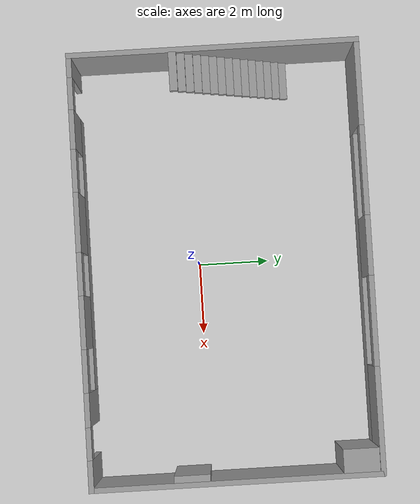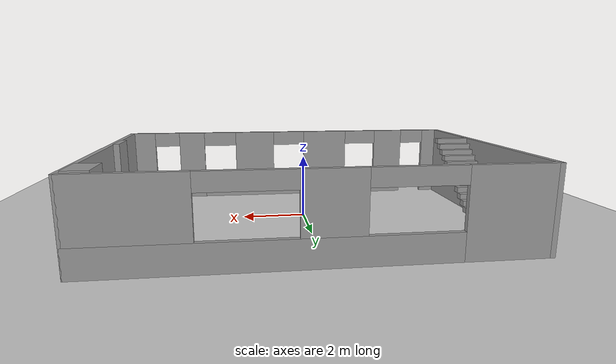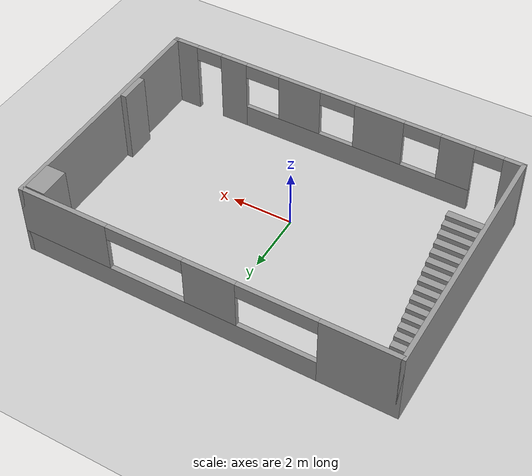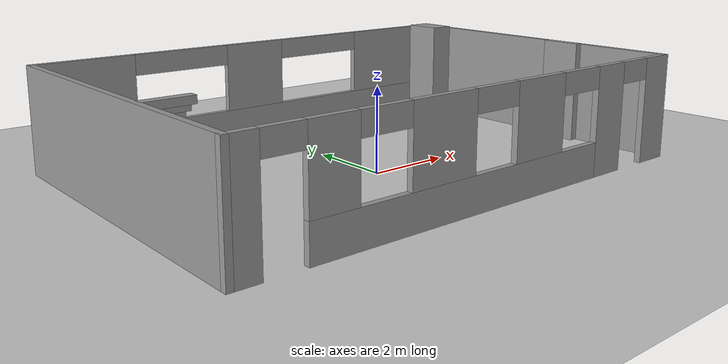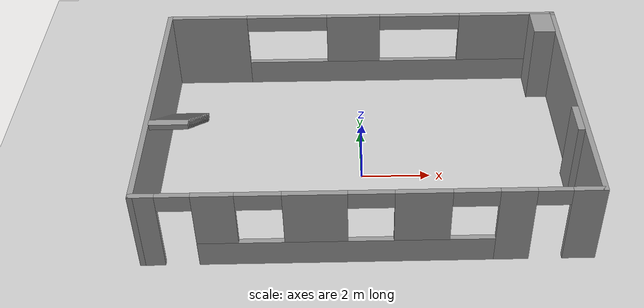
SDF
<sdf version="1.7">
 <world name="__default__">
  <gravity>0 0 -9.8</gravity>
  <magnetic_field>6e-06 2.3e-05 -4.2e-05</magnetic_field>
  <atmosphere type="adiabatic"/>
  <physics type="ode">
   <max_step_size>0.001</max_step_size>
   <real_time_factor>1</real_time_factor>
   <real_time_update_rate>1000</real_time_update_rate>
  </physics>
  <scene><ambient>0.4 0.4 0.4 1</ambient><background>0.7 0.7 0.7 1</background><shadows>1</shadows></scene>
  <spherical_coordinates>
   <surface_model>EARTH_WGS84</surface_model>
   <latitude_deg>0</latitude_deg>
   <longitude_deg>0</longitude_deg>
   <elevation>0</elevation>
   <heading_deg>0</heading_deg>
  </spherical_coordinates>
  <model name="new_room">
   <pose>0.112057 0.72809 0 0 -0 0</pose>
   <link name="Stairs_1">
    <visual name="Stairs_1_Visual_0">
     <pose>-5.40057 2.01661 0.083333 0 -0 0</pose>
     <geometry><box><size>1.09153 0.224566 0.166667</size></box></geometry>
     <material>
      <script><uri>file://media/materials/scripts/gazebo.material</uri><name>Gazebo/Grey</name></script>
      <ambient>1 1 1 1</ambient>
     </material>
     <meta><layer>0</layer></meta>
    </visual>
    <collision name="Stairs_1_Collision_0">
     <geometry><box><size>1.09153 0.224566 0.166667</size></box></geometry>
     <pose>-5.40057 2.01661 0.083333 0 -0 0</pose>
    </collision>
    <visual name="Stairs_1_Visual_1">
     <pose>-5.40057 1.79205 0.25 0 -0 0</pose>
     <geometry><box><size>1.09153 0.224566 0.166667</size></box></geometry>
     <material>
      <script><uri>file://media/materials/scripts/gazebo.material</uri><name>Gazebo/Grey</name></script>
      <ambient>1 1 1 1</ambient>
     </material>
     <meta><layer>0</layer></meta>
    </visual>
    <collision name="Stairs_1_Collision_1">
     <geometry><box><size>1.09153 0.224566 0.166667</size></box></geometry>
     <pose>-5.40057 1.79205 0.25 0 -0 0</pose>
    </collision>
    <visual name="Stairs_1_Visual_2">
     <pose>-5.40057 1.56748 0.416667 0 -0 0</pose>
     <geometry><box><size>1.09153 0.224566 0.166667</size></box></geometry>
     <material>
      <script><uri>file://media/materials/scripts/gazebo.material</uri><name>Gazebo/Grey</name></script>
      <ambient>1 1 1 1</ambient>
     </material>
     <meta><layer>0</layer></meta>
    </visual>
    <collision name="Stairs_1_Collision_2">
     <geometry><box><size>1.09153 0.224566 0.166667</size></box></geometry>
     <pose>-5.40057 1.56748 0.416667 0 -0 0</pose>
    </collision>
    <visual name="Stairs_1_Visual_3">
     <pose>-5.40057 1.34291 0.583333 0 -0 0</pose>
     <geometry><box><size>1.09153 0.224566 0.166667</size></box></geometry>
     <material>
      <script><uri>file://media/materials/scripts/gazebo.material</uri><name>Gazebo/Grey</name></script>
      <ambient>1 1 1 1</ambient>
     </material>
     <meta><layer>0</layer></meta>
    </visual>
    <collision name="Stairs_1_Collision_3">
     <geometry><box><size>1.09153 0.224566 0.166667</size></box></geometry>
     <pose>-5.40057 1.34291 0.583333 0 -0 0</pose>
    </collision>
    <visual name="Stairs_1_Visual_4">
     <pose>-5.40057 1.11835 0.75 0 -0 0</pose>
     <geometry><box><size>1.09153 0.224566 0.166667</size></box></geometry>
     <material>
      <script><uri>file://media/materials/scripts/gazebo.material</uri><name>Gazebo/Grey</name></script>
      <ambient>1 1 1 1</ambient>
     </material>
     <meta><layer>0</layer></meta>
    </visual>
    <collision name="Stairs_1_Collision_4">
     <geometry><box><size>1.09153 0.224566 0.166667</size></box></geometry>
     <pose>-5.40057 1.11835 0.75 0 -0 0</pose>
    </collision>
    <visual name="Stairs_1_Visual_5">
     <pose>-5.40057 0.893779 0.916667 0 -0 0</pose>
     <geometry><box><size>1.09153 0.224566 0.166667</size></box></geometry>
     <material>
      <script><uri>file://media/materials/scripts/gazebo.material</uri><name>Gazebo/Grey</name></script>
      <ambient>1 1 1 1</ambient>
     </material>
     <meta><layer>0</layer></meta>
    </visual>
    <collision name="Stairs_1_Collision_5">
     <geometry><box><size>1.09153 0.224566 0.166667</size></box></geometry>
     <pose>-5.40057 0.893779 0.916667 0 -0 0</pose>
    </collision>
    <visual name="Stairs_1_Visual_6">
     <pose>-5.40057 0.669213 1.08333 0 -0 0</pose>
     <geometry><box><size>1.09153 0.224566 0.166667</size></box></geometry>
     <material>
      <script><uri>file://media/materials/scripts/gazebo.material</uri><name>Gazebo/Grey</name></script>
      <ambient>1 1 1 1</ambient>
     </material>
     <meta><layer>0</layer></meta>
    </visual>
    <collision name="Stairs_1_Collision_6">
     <geometry><box><size>1.09153 0.224566 0.166667</size></box></geometry>
     <pose>-5.40057 0.669213 1.08333 0 -0 0</pose>
    </collision>
    <visual name="Stairs_1_Visual_7">
     <pose>-5.40057 0.444646 1.25 0 -0 0</pose>
     <geometry><box><size>1.09153 0.224566 0.166667</size></box></geometry>
     <material>
      <script><uri>file://media/materials/scripts/gazebo.material</uri><name>Gazebo/Grey</name></script>
      <ambient>1 1 1 1</ambient>
     </material>
     <meta><layer>0</layer></meta>
    </visual>
    <collision name="Stairs_1_Collision_7">
     <geometry><box><size>1.09153 0.224566 0.166667</size></box></geometry>
     <pose>-5.40057 0.444646 1.25 0 -0 0</pose>
    </collision>
    <visual name="Stairs_1_Visual_8">
     <pose>-5.40057 0.22008 1.41667 0 -0 0</pose>
     <geometry><box><size>1.09153 0.224566 0.166667</size></box></geometry>
     <material>
      <script><uri>file://media/materials/scripts/gazebo.material</uri><name>Gazebo/Grey</name></script>
      <ambient>1 1 1 1</ambient>
     </material>
     <meta><layer>0</layer></meta>
    </visual>
    <collision name="Stairs_1_Collision_8">
     <geometry><box><size>1.09153 0.224566 0.166667</size></box></geometry>
     <pose>-5.40057 0.22008 1.41667 0 -0 0</pose>
    </collision>
    <visual name="Stairs_1_Visual_9">
     <pose>-5.40057 -0.004487 1.58333 0 -0 0</pose>
     <geometry><box><size>1.09153 0.224566 0.166667</size></box></geometry>
     <material>
      <script><uri>file://media/materials/scripts/gazebo.material</uri><name>Gazebo/Grey</name></script>
      <ambient>1 1 1 1</ambient>
     </material>
     <meta><layer>0</layer></meta>
    </visual>
    <collision name="Stairs_1_Collision_9">
     <geometry><box><size>1.09153 0.224566 0.166667</size></box></geometry>
     <pose>-5.40057 -0.004487 1.58333 0 -0 0</pose>
    </collision>
    <visual name="Stairs_1_Visual_10">
     <pose>-5.40057 -0.229053 1.75 0 -0 0</pose>
     <geometry><box><size>1.09153 0.224566 0.166667</size></box></geometry>
     <material>
      <script><uri>file://media/materials/scripts/gazebo.material</uri><name>Gazebo/Grey</name></script>
      <ambient>1 1 1 1</ambient>
     </material>
     <meta><layer>0</layer></meta>
    </visual>
    <collision name="Stairs_1_Collision_10">
     <geometry><box><size>1.09153 0.224566 0.166667</size></box></geometry>
     <pose>-5.40057 -0.229053 1.75 0 -0 0</pose>
    </collision>
    <visual name="Stairs_1_Visual_11">
     <pose>-5.40057 -0.453619 1.91667 0 -0 0</pose>
     <geometry><box><size>1.09153 0.224566 0.166667</size></box></geometry>
     <material>
      <script><uri>file://media/materials/scripts/gazebo.material</uri><name>Gazebo/Grey</name></script>
      <ambient>1 1 1 1</ambient>
     </material>
     <meta><layer>0</layer></meta>
    </visual>
    <collision name="Stairs_1_Collision_11">
     <geometry><box><size>1.09153 0.224566 0.166667</size></box></geometry>
     <pose>-5.40057 -0.453619 1.91667 0 -0 0</pose>
    </collision>
    <visual name="Stairs_1_Visual_12">
     <pose>-5.40057 -0.678186 2.08333 0 -0 0</pose>
     <geometry><box><size>1.09153 0.224566 0.166667</size></box></geometry>
     <material>
      <script><uri>file://media/materials/scripts/gazebo.material</uri><name>Gazebo/Grey</name></script>
      <ambient>1 1 1 1</ambient>
     </material>
     <meta><layer>0</layer></meta>
    </visual>
    <collision name="Stairs_1_Collision_12">
     <geometry><box><size>1.09153 0.224566 0.166667</size></box></geometry>
     <pose>-5.40057 -0.678186 2.08333 0 -0 0</pose>
    </collision>
    <visual name="Stairs_1_Visual_13">
     <pose>-5.40057 -0.902752 2.25 0 -0 0</pose>
     <geometry><box><size>1.09153 0.224566 0.166667</size></box></geometry>
     <material>
      <script><uri>file://media/materials/scripts/gazebo.material</uri><name>Gazebo/Grey</name></script>
      <ambient>1 1 1 1</ambient>
     </material>
     <meta><layer>0</layer></meta>
    </visual>
    <collision name="Stairs_1_Collision_13">
     <geometry><box><size>1.09153 0.224566 0.166667</size></box></geometry>
     <pose>-5.40057 -0.902752 2.25 0 -0 0</pose>
    </collision>
    <visual name="Stairs_1_Visual_14">
     <pose>-5.40057 -1.12732 2.41667 0 -0 0</pose>
     <geometry><box><size>1.09153 0.224566 0.166667</size></box></geometry>
     <material>
      <script><uri>file://media/materials/scripts/gazebo.material</uri><name>Gazebo/Grey</name></script>
      <ambient>1 1 1 1</ambient>
     </material>
     <meta><layer>0</layer></meta>
    </visual>
    <collision name="Stairs_1_Collision_14">
     <geometry><box><size>1.09153 0.224566 0.166667</size></box></geometry>
     <pose>-5.40057 -1.12732 2.41667 0 -0 0</pose>
    </collision>
   </link>
   <link name="Wall_21">
    <pose>-0 4 0 0 -0 0</pose>
    <visual name="Wall_21_Visual_0">
     <pose>-4.84103 0 1.25 0 -0 0</pose>
     <geometry><box><size>2.46795 0.15 2.5</size></box></geometry>
     <material>
      <script><uri>file://media/materials/scripts/gazebo.material</uri><name>Gazebo/Grey</name></script>
      <ambient>1 1 1 1</ambient>
     </material>
     <meta><layer>0</layer></meta>
    </visual>
    <collision name="Wall_21_Collision_0">
     <geometry><box><size>2.46795 0.15 2.5</size></box></geometry>
     <pose>-4.84103 0 1.25 0 -0 0</pose>
    </collision>
    <visual name="Wall_21_Visual_1">
     <pose>1.23397 0 0.4 0 -0 0</pose>
     <geometry><box><size>9.68205 0.15 0.8</size></box></geometry>
     <material>
      <script><uri>file://media/materials/scripts/gazebo.material</uri><name>Gazebo/Grey</name></script>
      <ambient>1 1 1 1</ambient>
     </material>
     <meta><layer>0</layer></meta>
    </visual>
    <collision name="Wall_21_Collision_1">
     <geometry><box><size>9.68205 0.15 0.8</size></box></geometry>
     <pose>1.23397 0 0.4 0 -0 0</pose>
    </collision>
    <visual name="Wall_21_Visual_2">
     <pose>-0.270095 0 1.65 0 -0 0</pose>
     <geometry><box><size>1.67391 0.15 1.7</size></box></geometry>
     <material>
      <script><uri>file://media/materials/scripts/gazebo.material</uri><name>Gazebo/Grey</name></script>
      <ambient>1 1 1 1</ambient>
     </material>
     <meta><layer>0</layer></meta>
    </visual>
    <collision name="Wall_21_Collision_2">
     <geometry><box><size>1.67391 0.15 1.7</size></box></geometry>
     <pose>-0.270095 0 1.65 0 -0 0</pose>
    </collision>
    <visual name="Wall_21_Visual_3">
     <pose>4.57093 0 1.65 0 -0 0</pose>
     <geometry><box><size>3.00814 0.15 1.7</size></box></geometry>
     <material>
      <script><uri>file://media/materials/scripts/gazebo.material</uri><name>Gazebo/Grey</name></script>
      <ambient>1 1 1 1</ambient>
     </material>
     <meta><layer>0</layer></meta>
    </visual>
    <collision name="Wall_21_Collision_3">
     <geometry><box><size>3.00814 0.15 1.7</size></box></geometry>
     <pose>4.57093 0 1.65 0 -0 0</pose>
    </collision>
    <visual name="Wall_21_Visual_4">
     <pose>-2.35705 0 2.25 0 -0 0</pose>
     <geometry><box><size>2.5 0.15 0.5</size></box></geometry>
     <material>
      <script><uri>file://media/materials/scripts/gazebo.material</uri><name>Gazebo/Grey</name></script>
      <ambient>1 1 1 1</ambient>
     </material>
     <meta><layer>0</layer></meta>
    </visual>
    <collision name="Wall_21_Collision_4">
     <geometry><box><size>2.5 0.15 0.5</size></box></geometry>
     <pose>-2.35705 0 2.25 0 -0 0</pose>
    </collision>
    <visual name="Wall_21_Visual_5">
     <pose>1.81686 0 2.25 0 -0 0</pose>
     <geometry><box><size>2.5 0.15 0.5</size></box></geometry>
     <material>
      <script><uri>file://media/materials/scripts/gazebo.material</uri><name>Gazebo/Grey</name></script>
      <ambient>1 1 1 1</ambient>
     </material>
     <meta><layer>0</layer></meta>
    </visual>
    <collision name="Wall_21_Collision_5">
     <geometry><box><size>2.5 0.15 0.5</size></box></geometry>
     <pose>1.81686 0 2.25 0 -0 0</pose>
    </collision>
   </link>
   <link name="Wall_22">
    <collision name="Wall_22_Collision">
     <geometry><box><size>8.15 0.15 2.5</size></box></geometry>
     <pose>0 0 1.25 0 -0 0</pose>
    </collision>
    <visual name="Wall_22_Visual">
     <pose>0 0 1.25 0 -0 0</pose>
     <geometry><box><size>8.15 0.15 2.5</size></box></geometry>
     <material>
      <script><uri>file://media/materials/scripts/gazebo.material</uri><name>Gazebo/Grey</name></script>
      <ambient>1 1 1 1</ambient>
     </material>
     <meta><layer>0</layer></meta>
    </visual>
    <pose>6 0 0 0 -0 -1.5708</pose>
   </link>
   <link name="Wall_23">
    <pose>-0 -4 0 0 -0 3.14159</pose>
    <visual name="Wall_23_Visual_0">
     <pose>-5.62779 0 1.25 0 -0 0</pose>
     <geometry><box><size>0.894419 0.15 2.5</size></box></geometry>
     <material>
      <script><uri>file://media/materials/scripts/gazebo.material</uri><name>Gazebo/Grey</name></script>
      <ambient>1 1 1 1</ambient>
     </material>
     <meta><layer>0</layer></meta>
    </visual>
    <collision name="Wall_23_Collision_0">
     <geometry><box><size>0.894419 0.15 2.5</size></box></geometry>
     <pose>-5.62779 0 1.25 0 -0 0</pose>
    </collision>
    <visual name="Wall_23_Visual_1">
     <pose>-3.80993 0 1.25 0 -0 0</pose>
     <geometry><box><size>0.941293 0.15 2.5</size></box></geometry>
     <material>
      <script><uri>file://media/materials/scripts/gazebo.material</uri><name>Gazebo/Grey</name></script>
      <ambient>1 1 1 1</ambient>
     </material>
     <meta><layer>0</layer></meta>
    </visual>
    <collision name="Wall_23_Collision_1">
     <geometry><box><size>0.941293 0.15 2.5</size></box></geometry>
     <pose>-3.80993 0 1.25 0 -0 0</pose>
    </collision>
    <visual name="Wall_23_Visual_2">
     <pose>5.73474 0 1.25 0 -0 0</pose>
     <geometry><box><size>0.680521 0.15 2.5</size></box></geometry>
     <material>
      <script><uri>file://media/materials/scripts/gazebo.material</uri><name>Gazebo/Grey</name></script>
      <ambient>1 1 1 1</ambient>
     </material>
     <meta><layer>0</layer></meta>
    </visual>
    <collision name="Wall_23_Collision_2">
     <geometry><box><size>0.680521 0.15 2.5</size></box></geometry>
     <pose>5.73474 0 1.25 0 -0 0</pose>
    </collision>
    <visual name="Wall_23_Visual_3">
     <pose>0.577595 0 0.4 0 -0 0</pose>
     <geometry><box><size>7.83377 0.15 0.8</size></box></geometry>
     <material>
      <script><uri>file://media/materials/scripts/gazebo.material</uri><name>Gazebo/Grey</name></script>
      <ambient>1 1 1 1</ambient>
     </material>
     <meta><layer>0</layer></meta>
    </visual>
    <collision name="Wall_23_Collision_3">
     <geometry><box><size>7.83377 0.15 0.8</size></box></geometry>
     <pose>0.577595 0 0.4 0 -0 0</pose>
    </collision>
    <visual name="Wall_23_Visual_4">
     <pose>-1.40234 0 1.65 0 -0 0</pose>
     <geometry><box><size>1.4739 0.15 1.7</size></box></geometry>
     <material>
      <script><uri>file://media/materials/scripts/gazebo.material</uri><name>Gazebo/Grey</name></script>
      <ambient>1 1 1 1</ambient>
     </material>
     <meta><layer>0</layer></meta>
    </visual>
    <collision name="Wall_23_Collision_4">
     <geometry><box><size>1.4739 0.15 1.7</size></box></geometry>
     <pose>-1.40234 0 1.65 0 -0 0</pose>
    </collision>
    <visual name="Wall_23_Visual_5">
     <pose>1.3658 0 1.65 0 -0 0</pose>
     <geometry><box><size>1.66239 0.15 1.7</size></box></geometry>
     <material>
      <script><uri>file://media/materials/scripts/gazebo.material</uri><name>Gazebo/Grey</name></script>
      <ambient>1 1 1 1</ambient>
     </material>
     <meta><layer>0</layer></meta>
    </visual>
    <collision name="Wall_23_Collision_5">
     <geometry><box><size>1.66239 0.15 1.7</size></box></geometry>
     <pose>1.3658 0 1.65 0 -0 0</pose>
    </collision>
    <visual name="Wall_23_Visual_6">
     <pose>3.94574 0 1.65 0 -0 0</pose>
     <geometry><box><size>1.09748 0.15 1.7</size></box></geometry>
     <material>
      <script><uri>file://media/materials/scripts/gazebo.material</uri><name>Gazebo/Grey</name></script>
      <ambient>1 1 1 1</ambient>
     </material>
     <meta><layer>0</layer></meta>
    </visual>
    <collision name="Wall_23_Collision_6">
     <geometry><box><size>1.09748 0.15 1.7</size></box></geometry>
     <pose>3.94574 0 1.65 0 -0 0</pose>
    </collision>
    <visual name="Wall_23_Visual_7">
     <pose>-4.73058 0 2.25 0 -0 0</pose>
     <geometry><box><size>0.9 0.15 0.5</size></box></geometry>
     <material>
      <script><uri>file://media/materials/scripts/gazebo.material</uri><name>Gazebo/Grey</name></script>
      <ambient>1 1 1 1</ambient>
     </material>
     <meta><layer>0</layer></meta>
    </visual>
    <collision name="Wall_23_Collision_7">
     <geometry><box><size>0.9 0.15 0.5</size></box></geometry>
     <pose>-4.73058 0 2.25 0 -0 0</pose>
    </collision>
    <visual name="Wall_23_Visual_8">
     <pose>4.94448 0 2.25 0 -0 0</pose>
     <geometry><box><size>0.9 0.15 0.5</size></box></geometry>
     <material>
      <script><uri>file://media/materials/scripts/gazebo.material</uri><name>Gazebo/Grey</name></script>
      <ambient>1 1 1 1</ambient>
     </material>
     <meta><layer>0</layer></meta>
    </visual>
    <collision name="Wall_23_Collision_8">
     <geometry><box><size>0.9 0.15 0.5</size></box></geometry>
     <pose>4.94448 0 2.25 0 -0 0</pose>
    </collision>
    <visual name="Wall_23_Visual_9">
     <pose>-2.73929 0 2.25 0 -0 0</pose>
     <geometry><box><size>1.2 0.15 0.5</size></box></geometry>
     <material>
      <script><uri>file://media/materials/scripts/gazebo.material</uri><name>Gazebo/Grey</name></script>
      <ambient>1 1 1 1</ambient>
     </material>
     <meta><layer>0</layer></meta>
    </visual>
    <collision name="Wall_23_Collision_9">
     <geometry><box><size>1.2 0.15 0.5</size></box></geometry>
     <pose>-2.73929 0 2.25 0 -0 0</pose>
    </collision>
    <visual name="Wall_23_Visual_10">
     <pose>-0.065391 0 2.25 0 -0 0</pose>
     <geometry><box><size>1.2 0.15 0.5</size></box></geometry>
     <material>
      <script><uri>file://media/materials/scripts/gazebo.material</uri><name>Gazebo/Grey</name></script>
      <ambient>1 1 1 1</ambient>
     </material>
     <meta><layer>0</layer></meta>
    </visual>
    <collision name="Wall_23_Collision_10">
     <geometry><box><size>1.2 0.15 0.5</size></box></geometry>
     <pose>-0.065391 0 2.25 0 -0 0</pose>
    </collision>
    <visual name="Wall_23_Visual_11">
     <pose>2.797 0 2.25 0 -0 0</pose>
     <geometry><box><size>1.2 0.15 0.5</size></box></geometry>
     <material>
      <script><uri>file://media/materials/scripts/gazebo.material</uri><name>Gazebo/Grey</name></script>
      <ambient>1 1 1 1</ambient>
     </material>
     <meta><layer>0</layer></meta>
    </visual>
    <collision name="Wall_23_Collision_11">
     <geometry><box><size>1.2 0.15 0.5</size></box></geometry>
     <pose>2.797 0 2.25 0 -0 0</pose>
    </collision>
   </link>
   <link name="Wall_24">
    <collision name="Wall_24_Collision">
     <geometry><box><size>8.15 0.15 2.5</size></box></geometry>
     <pose>0 0 1.25 0 -0 0</pose>
    </collision>
    <visual name="Wall_24_Visual">
     <pose>0 0 1.25 0 -0 0</pose>
     <geometry><box><size>8.15 0.15 2.5</size></box></geometry>
     <material>
      <script><uri>file://media/materials/scripts/gazebo.material</uri><name>Gazebo/Grey</name></script>
      <ambient>1 1 1 1</ambient>
     </material>
     <meta><layer>0</layer></meta>
    </visual>
    <pose>-6 0 0 0 -0 1.5708</pose>
   </link>
   <static>1</static>
  </model>
  <model name="ground_plane">
   <static>1</static>
   <link name="link">
    <collision name="collision">
     <geometry><plane><normal>0 0 1</normal><size>100 100</size></plane></geometry>
     <surface>
      <contact><collide_bitmask>65535</collide_bitmask></contact>
      <friction><ode><mu>100</mu><mu2>50</mu2></ode></friction>
     </surface>
    </collision>
    <visual name="visual">
     <cast_shadows>0</cast_shadows>
     <geometry><plane><normal>0 0 1</normal><size>100 100</size></plane></geometry>
     <material>
      <script><uri>file://media/materials/scripts/gazebo.material</uri><name>Gazebo/Grey</name></script>
     </material>
    </visual>
   </link>
   <pose>-5.53044 6.93841 0 0 -0 0</pose>
  </model>
  <light name="sun" type="directional">
   <pose>-19.6235 10.7469 10 0 -0 0</pose>
   <diffuse>0.8 0.8 0.8 1</diffuse>
   <specular>0.2 0.2 0.2 1</specular>
   <attenuation>
    <range>1000</range>
    <constant>0.9</constant>
    <linear>0.01</linear>
    <quadratic>0.001</quadratic>
   </attenuation>
   <direction>-0.5 0.1 -0.9</direction>
  </light>
  <model name="unit_box">
   <pose>5.9413 -0.500176 1.26147 3e-06 -0 -4e-06</pose>
   <link name="link">
    <inertial>
     <mass>1</mass>
     <inertia>
      <ixx>0.166667</ixx>
      <ixy>0</ixy>
      <ixz>0</ixz>
      <iyy>0.166667</iyy>
      <iyz>0</iyz>
      <izz>0.166667</izz>
     </inertia>
    </inertial>
    <collision name="collision"><geometry><box><size>0.191502 1 2.52295</size></box></geometry></collision>
    <visual name="visual">
     <geometry><box><size>0.191502 1 2.52295</size></box></geometry>
     <material>
      <script><name>Gazebo/Grey</name><uri>file://media/materials/scripts/gazebo.material</uri></script>
     </material>
    </visual>
   </link>
  </model>
  <model name="unit_box_0">
   <pose>5.71045 4.14477 1.27212 -1e-06 0 0.000182</pose>
   <link name="link">
    <inertial>
     <mass>1</mass>
     <inertia>
      <ixx>0.166667</ixx>
      <ixy>0</ixy>
      <ixz>0</ixz>
      <iyy>0.166667</iyy>
      <iyz>0</iyz>
      <izz>0.166667</izz>
     </inertia>
    </inertial>
    <collision name="collision"><geometry><box><size>0.652967 1 2.54423</size></box></geometry></collision>
    <visual name="visual">
     <geometry><box><size>0.652967 1 2.54423</size></box></geometry>
     <material>
      <script><name>Gazebo/Grey</name><uri>file://media/materials/scripts/gazebo.material</uri></script>
     </material>
    </visual>
   </link>
  </model>
 </world>
</sdf>
